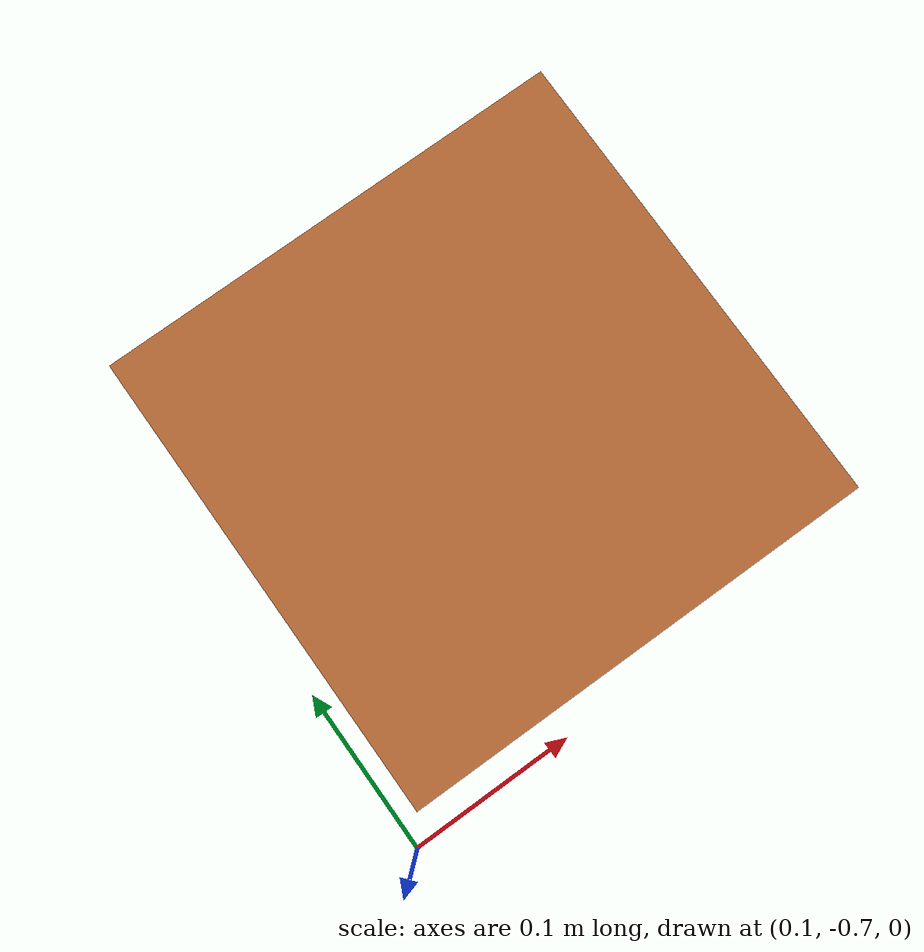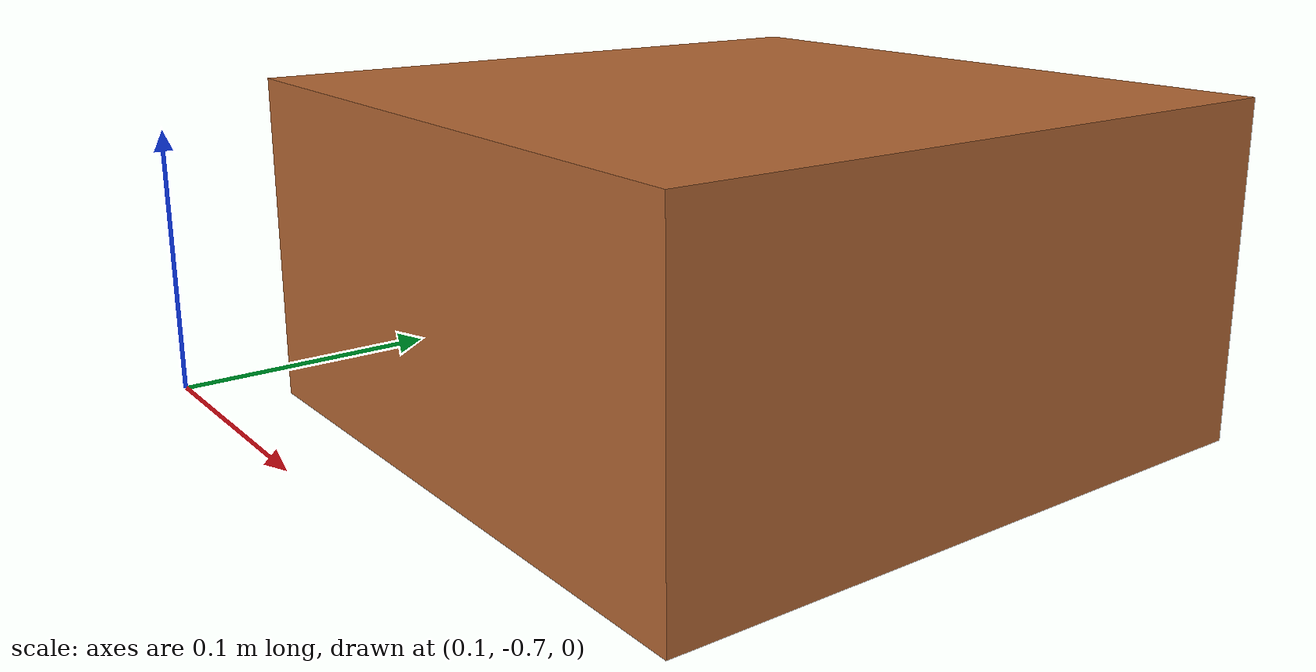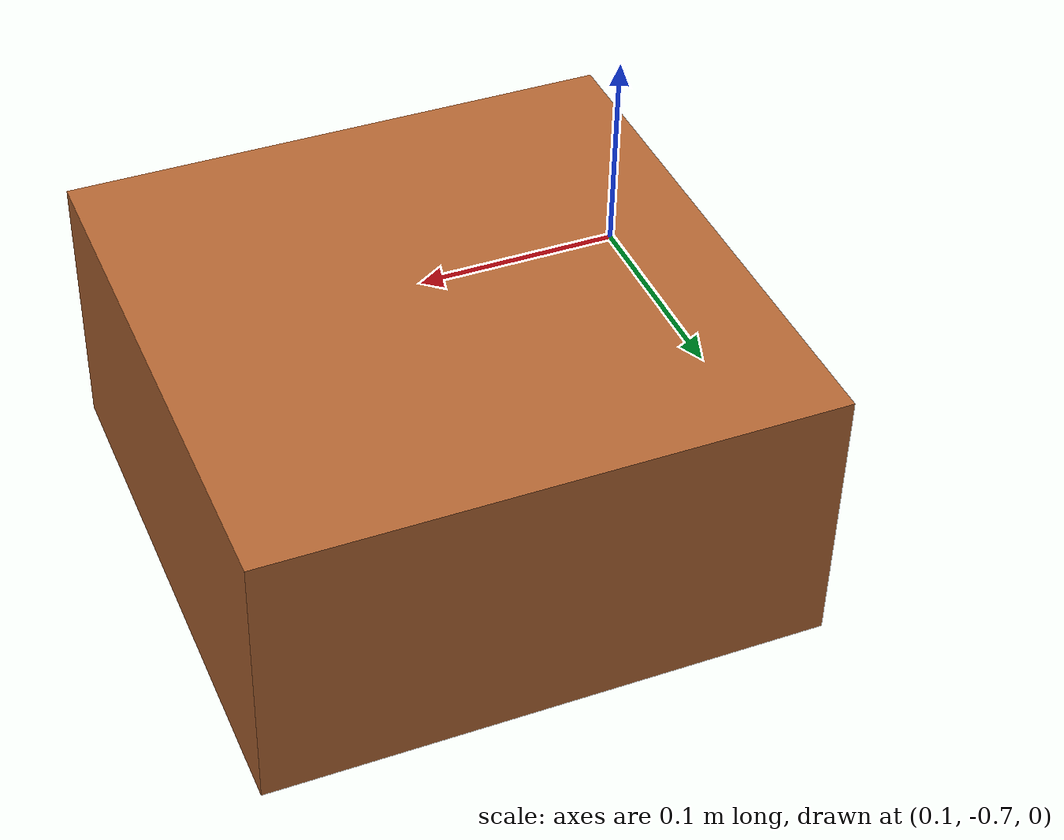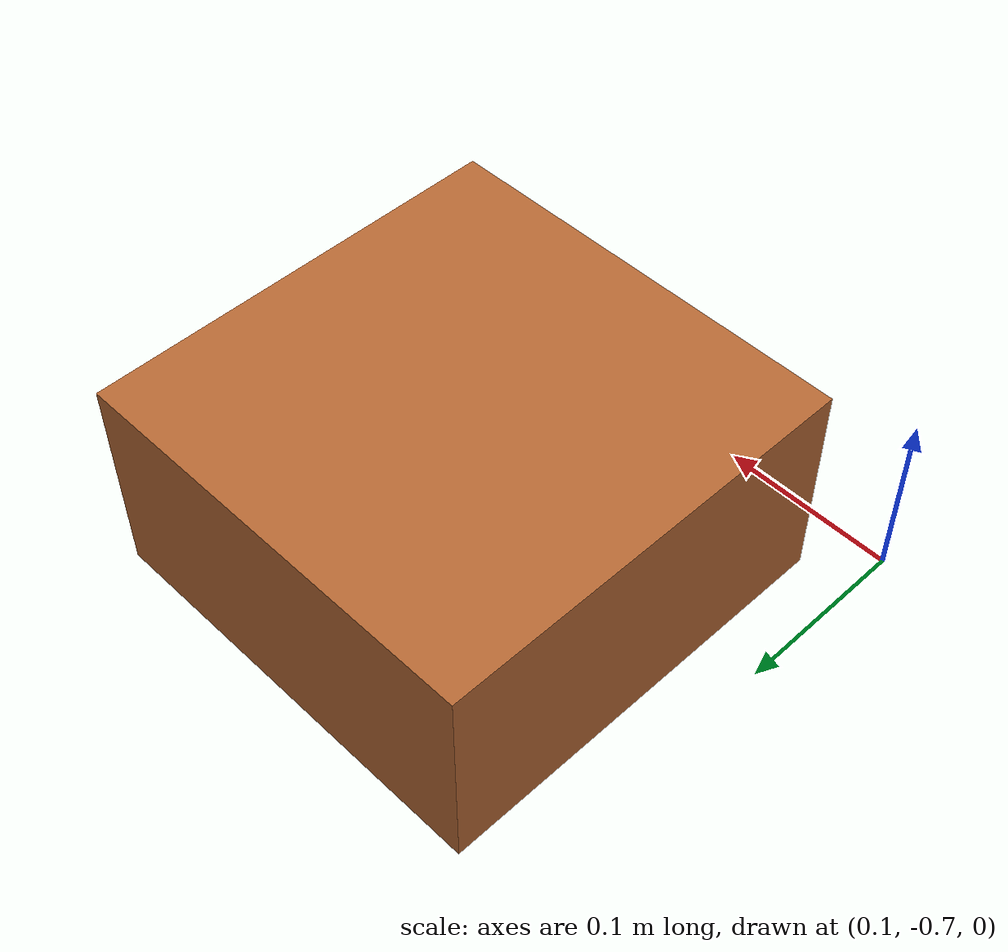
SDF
<?xml version="1.0" ?>
<sdf version="1.6">
  <model name="sink_2">
    <static>true</static>
    <pose>0.25 -0.55 0.06 0 0 0</pose>
    <link name="link">
      <collision name="collision">
        <geometry><box><size>0.24 0.24 0.12</size></box></geometry>
      </collision>
      <visual name="visual">
        <geometry><box><size>0.24 0.24 0.12</size></box></geometry>
        <material>
          <ambient>0.7 0.4 0.2 1</ambient>
          <diffuse>0.7 0.4 0.2 1</diffuse>
        </material>
      </visual>
    </link>
  </model>
</sdf>
